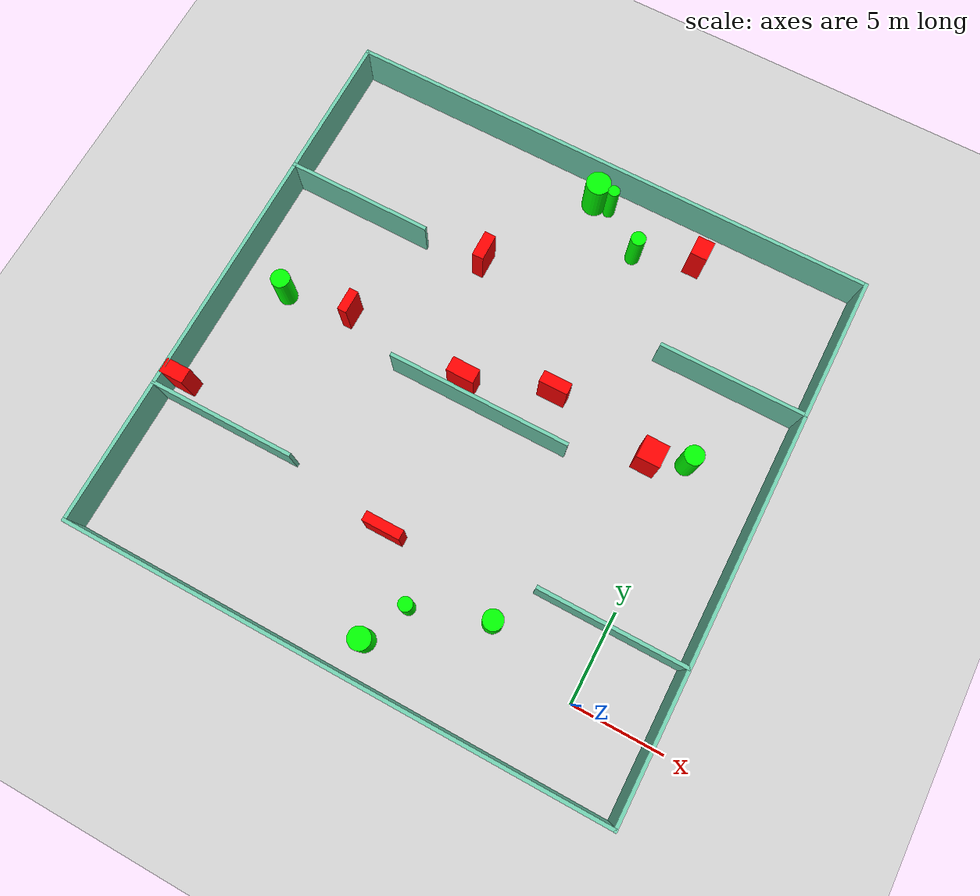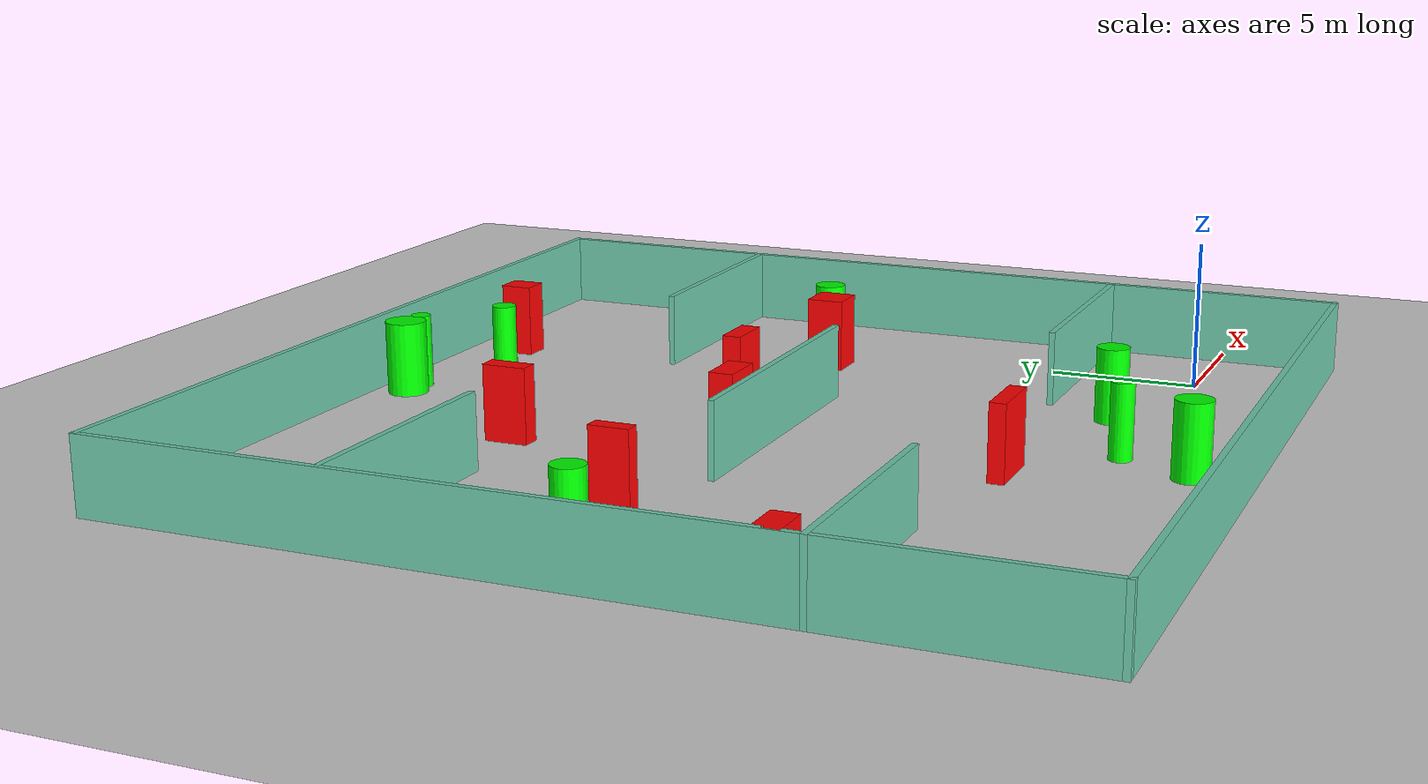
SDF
<sdf version="1.7">
 <world name="default">
  <light name="sun" type="directional">
   <pose>0 0 10 0 -0 0</pose>
   <diffuse>0.8 0.8 0.8 1</diffuse>
   <specular>0.2 0.2 0.2 1</specular>
   <attenuation>
    <range>1000</range>
    <constant>0.9</constant>
    <linear>0.01</linear>
    <quadratic>0.001</quadratic>
   </attenuation>
   <direction>-0.5 0.1 -0.9</direction>
   <spot><inner_angle>0</inner_angle><outer_angle>0</outer_angle><falloff>0</falloff></spot>
  </light>
  <model name="ground_plane">
   <static>1</static>
   <link name="link">
    <collision name="collision">
     <geometry><plane><normal>0 0 1</normal><size>100 100</size></plane></geometry>
     <surface>
      <contact><collide_bitmask>65535</collide_bitmask></contact>
      <friction><ode><mu>100</mu><mu2>50</mu2></ode></friction>
     </surface>
    </collision>
    <visual name="visual">
     <cast_shadows>0</cast_shadows>
     <geometry><plane><normal>0 0 1</normal><size>100 100</size></plane></geometry>
     <material>
      <script><uri>file://media/materials/scripts/gazebo.material</uri><name>Gazebo/Grey</name></script>
     </material>
    </visual>
   </link>
  </model>
  <gravity>0 0 -9.8</gravity>
  <magnetic_field>6e-06 2.3e-05 -4.2e-05</magnetic_field>
  <atmosphere type="adiabatic"/>
  <physics type="ode">
   <max_step_size>0.001</max_step_size>
   <real_time_factor>1</real_time_factor>
   <real_time_update_rate>1000</real_time_update_rate>
  </physics>
  <scene><ambient>0.4 0.4 0.4 1</ambient><background>0.7 0.7 0.7 1</background><shadows>1</shadows></scene>
  <spherical_coordinates>
   <surface_model>EARTH_WGS84</surface_model>
   <latitude_deg>0</latitude_deg>
   <longitude_deg>0</longitude_deg>
   <elevation>0</elevation>
   <heading_deg>0</heading_deg>
  </spherical_coordinates>
  <model name="my_base_walls">
   <link name="Wall_10">
    <collision name="Wall_10_Collision">
     <geometry><box><size>8.2 0.2 2.5</size></box></geometry>
     <pose>0 0 1.25 0 -0 0</pose>
    </collision>
    <visual name="Wall_10_Visual">
     <pose>0 0 1.25 0 -0 0</pose>
     <geometry><box><size>8.2 0.2 2.5</size></box></geometry>
     <material>
      <script><uri>file://media/materials/scripts/gazebo.material</uri><name>Gazebo/Grey</name></script>
      <ambient>0.435294 0.796078 0.67451 1</ambient>
     </material>
     <meta><layer>0</layer></meta>
    </visual>
    <pose>-11 -7 0 0 -0 0</pose>
   </link>
   <link name="Wall_12">
    <collision name="Wall_12_Collision">
     <geometry><box><size>8.2 0.2 2.5</size></box></geometry>
     <pose>0 0 1.25 0 -0 0</pose>
    </collision>
    <visual name="Wall_12_Visual">
     <pose>0 0 1.25 0 -0 0</pose>
     <geometry><box><size>8.2 0.2 2.5</size></box></geometry>
     <material>
      <script><uri>file://media/materials/scripts/gazebo.material</uri><name>Gazebo/Grey</name></script>
      <ambient>0.435294 0.796078 0.67451 1</ambient>
     </material>
     <meta><layer>0</layer></meta>
    </visual>
    <pose>-11 7 0 0 -0 0</pose>
   </link>
   <link name="Wall_14">
    <collision name="Wall_14_Collision">
     <geometry><box><size>8.2 0.2 2.5</size></box></geometry>
     <pose>0 0 1.25 0 -0 0</pose>
    </collision>
    <visual name="Wall_14_Visual">
     <pose>0 0 1.25 0 -0 0</pose>
     <geometry><box><size>8.2 0.2 2.5</size></box></geometry>
     <material>
      <script><uri>file://media/materials/scripts/gazebo.material</uri><name>Gazebo/Grey</name></script>
      <ambient>0.435294 0.796078 0.67451 1</ambient>
     </material>
     <meta><layer>0</layer></meta>
    </visual>
    <pose>11 7 0 0 -0 3.14159</pose>
   </link>
   <link name="Wall_16">
    <collision name="Wall_16_Collision">
     <geometry><box><size>10.2 0.2 2.5</size></box></geometry>
     <pose>0 0 1.25 0 -0 0</pose>
    </collision>
    <visual name="Wall_16_Visual">
     <pose>0 0 1.25 0 -0 0</pose>
     <geometry><box><size>10.2 0.2 2.5</size></box></geometry>
     <material>
      <script><uri>file://media/materials/scripts/gazebo.material</uri><name>Gazebo/Grey</name></script>
      <ambient>0.435294 0.796078 0.67451 1</ambient>
     </material>
     <meta><layer>0</layer></meta>
    </visual>
    <pose>0 0 0 0 -0 3.14159</pose>
   </link>
   <link name="Wall_2">
    <collision name="Wall_2_Collision">
     <geometry><box><size>30.2 0.2 2.5</size></box></geometry>
     <pose>0 0 1.25 0 -0 0</pose>
    </collision>
    <visual name="Wall_2_Visual">
     <pose>0 0 1.25 0 -0 0</pose>
     <geometry><box><size>30.2 0.2 2.5</size></box></geometry>
     <material>
      <script><uri>file://media/materials/scripts/gazebo.material</uri><name>Gazebo/Grey</name></script>
      <ambient>0.435294 0.796078 0.67451 1</ambient>
     </material>
     <meta><layer>0</layer></meta>
    </visual>
    <pose>0 -15 0 0 -0 3.14159</pose>
   </link>
   <link name="Wall_3">
    <collision name="Wall_3_Collision">
     <geometry><box><size>30.2 0.2 2.5</size></box></geometry>
     <pose>0 0 1.25 0 -0 0</pose>
    </collision>
    <visual name="Wall_3_Visual">
     <pose>0 0 1.25 0 -0 0</pose>
     <geometry><box><size>30.2 0.2 2.5</size></box></geometry>
     <material>
      <script><uri>file://media/materials/scripts/gazebo.material</uri><name>Gazebo/Grey</name></script>
      <ambient>0.435294 0.796078 0.67451 1</ambient>
     </material>
     <meta><layer>0</layer></meta>
    </visual>
    <pose>-15 0 0 0 -0 1.5708</pose>
   </link>
   <link name="Wall_4">
    <collision name="Wall_4_Collision">
     <geometry><box><size>30.2 0.2 2.5</size></box></geometry>
     <pose>0 0 1.25 0 -0 0</pose>
    </collision>
    <visual name="Wall_4_Visual">
     <pose>0 0 1.25 0 -0 0</pose>
     <geometry><box><size>30.2 0.2 2.5</size></box></geometry>
     <material>
      <script><uri>file://media/materials/scripts/gazebo.material</uri><name>Gazebo/Grey</name></script>
      <ambient>0.435294 0.796078 0.67451 1</ambient>
     </material>
     <meta><layer>0</layer></meta>
    </visual>
    <pose>0 15 0 0 -0 0</pose>
   </link>
   <link name="Wall_6">
    <collision name="Wall_6_Collision">
     <geometry><box><size>30.2 0.2 2.5</size></box></geometry>
     <pose>0 0 1.25 0 -0 0</pose>
    </collision>
    <visual name="Wall_6_Visual">
     <pose>0 0 1.25 0 -0 0</pose>
     <geometry><box><size>30.2 0.2 2.5</size></box></geometry>
     <material>
      <script><uri>file://media/materials/scripts/gazebo.material</uri><name>Gazebo/Grey</name></script>
      <ambient>0.435294 0.796078 0.67451 1</ambient>
     </material>
     <meta><layer>0</layer></meta>
    </visual>
    <pose>15 0 0 0 -0 1.5708</pose>
   </link>
   <link name="Wall_8">
    <collision name="Wall_8_Collision">
     <geometry><box><size>8.2 0.2 2.5</size></box></geometry>
     <pose>0 0 1.25 0 -0 0</pose>
    </collision>
    <visual name="Wall_8_Visual">
     <pose>0 0 1.25 0 -0 0</pose>
     <geometry><box><size>8.2 0.2 2.5</size></box></geometry>
     <material>
      <script><uri>file://media/materials/scripts/gazebo.material</uri><name>Gazebo/Grey</name></script>
      <ambient>0.435294 0.796078 0.67451 1</ambient>
     </material>
     <meta><layer>0</layer></meta>
    </visual>
    <pose>11 -7 0 0 -0 3.14159</pose>
   </link>
   <static>1</static>
   <pose>-11 11 0 0 -0 0</pose>
  </model>
  <model name="cylinder1">
   <static>1</static>
   <link name="link">
    <inertial>
     <mass>1</mass>
     <inertia><ixx>0.5</ixx><ixy>0</ixy><ixz>0</ixz><iyy>0.5</iyy><iyz>0</iyz><izz>1</izz></inertia>
    </inertial>
    <collision name="collision">
     <geometry><cylinder><radius>0.5984433478620481</radius><length>2.5</length></cylinder></geometry>
    </collision>
    <visual name="visual">
     <geometry><cylinder><radius>0.5984433478620481</radius><length>2.5</length></cylinder></geometry>
     <material>
      <ambient>0 1 0 1</ambient>
      <diffuse>0 1 0 1</diffuse>
      <specular>0.1 0.1 0.1 1</specular>
      <emissive>0 0 0 0</emissive>
     </material>
    </visual>
   </link>
   <pose>-10.418359806179625 -2.1097786383016506 1.25 0 0 0</pose>
  </model>
  <model name="cylinder2">
   <static>1</static>
   <link name="link">
    <inertial>
     <mass>1</mass>
     <inertia><ixx>0.5</ixx><ixy>0</ixy><ixz>0</ixz><iyy>0.5</iyy><iyz>0</iyz><izz>1</izz></inertia>
    </inertial>
    <collision name="collision">
     <geometry><cylinder><radius>0.3793835811991671</radius><length>2.5</length></cylinder></geometry>
    </collision>
    <visual name="visual">
     <geometry><cylinder><radius>0.3793835811991671</radius><length>2.5</length></cylinder></geometry>
     <material>
      <ambient>0 1 0 1</ambient>
      <diffuse>0 1 0 1</diffuse>
      <specular>0.1 0.1 0.1 1</specular>
      <emissive>0 0 0 0</emissive>
     </material>
    </visual>
   </link>
   <pose>-9.26298502358144 0.31633556215784475 1.25 0 0 0</pose>
  </model>
  <model name="cylinder3">
   <static>1</static>
   <link name="link">
    <inertial>
     <mass>1</mass>
     <inertia><ixx>0.5</ixx><ixy>0</ixy><ixz>0</ixz><iyy>0.5</iyy><iyz>0</iyz><izz>1</izz></inertia>
    </inertial>
    <collision name="collision">
     <geometry><cylinder><radius>0.4111278393068384</radius><length>2.5</length></cylinder></geometry>
    </collision>
    <visual name="visual">
     <geometry><cylinder><radius>0.4111278393068384</radius><length>2.5</length></cylinder></geometry>
     <material>
      <ambient>0 1 0 1</ambient>
      <diffuse>0 1 0 1</diffuse>
      <specular>0.1 0.1 0.1 1</specular>
      <emissive>0 0 0 0</emissive>
     </material>
    </visual>
   </link>
   <pose>-7.64579788698823 22.791320519709302 1.25 0 0 0</pose>
  </model>
  <model name="cylinder4">
   <static>1</static>
   <link name="link">
    <inertial>
     <mass>1</mass>
     <inertia><ixx>0.5</ixx><ixy>0</ixy><ixz>0</ixz><iyy>0.5</iyy><iyz>0</iyz><izz>1</izz></inertia>
    </inertial>
    <collision name="collision">
     <geometry><cylinder><radius>0.3292239382885055</radius><length>2.5</length></cylinder></geometry>
    </collision>
    <visual name="visual">
     <geometry><cylinder><radius>0.3292239382885055</radius><length>2.5</length></cylinder></geometry>
     <material>
      <ambient>0 1 0 1</ambient>
      <diffuse>0 1 0 1</diffuse>
      <specular>0.1 0.1 0.1 1</specular>
      <emissive>0 0 0 0</emissive>
     </material>
    </visual>
   </link>
   <pose>-10.011981007198647 24.696736998022978 1.25 0 0 0</pose>
  </model>
  <model name="cylinder5">
   <static>1</static>
   <link name="link">
    <inertial>
     <mass>1</mass>
     <inertia><ixx>0.5</ixx><ixy>0</ixy><ixz>0</ixz><iyy>0.5</iyy><iyz>0</iyz><izz>1</izz></inertia>
    </inertial>
    <collision name="collision">
     <geometry><cylinder><radius>0.5250980383060764</radius><length>2.5</length></cylinder></geometry>
    </collision>
    <visual name="visual">
     <geometry><cylinder><radius>0.5250980383060764</radius><length>2.5</length></cylinder></geometry>
     <material>
      <ambient>0 1 0 1</ambient>
      <diffuse>0 1 0 1</diffuse>
      <specular>0.1 0.1 0.1 1</specular>
      <emissive>0 0 0 0</emissive>
     </material>
    </visual>
   </link>
   <pose>-23.251029225052005 11.903794442685705 1.25 0 0 0</pose>
  </model>
  <model name="cylinder6">
   <static>1</static>
   <link name="link">
    <inertial>
     <mass>1</mass>
     <inertia><ixx>0.5</ixx><ixy>0</ixy><ixz>0</ixz><iyy>0.5</iyy><iyz>0</iyz><izz>1</izz></inertia>
    </inertial>
    <collision name="collision">
     <geometry><cylinder><radius>0.6848906532727277</radius><length>2.5</length></cylinder></geometry>
    </collision>
    <visual name="visual">
     <geometry><cylinder><radius>0.6848906532727277</radius><length>2.5</length></cylinder></geometry>
     <material>
      <ambient>0 1 0 1</ambient>
      <diffuse>0 1 0 1</diffuse>
      <specular>0.1 0.1 0.1 1</specular>
      <emissive>0 0 0 0</emissive>
     </material>
    </visual>
   </link>
   <pose>-10.946355694290666 24.724185452318647 1.25 0 0 0</pose>
  </model>
  <model name="cylinder7">
   <static>1</static>
   <link name="link">
    <inertial>
     <mass>1</mass>
     <inertia><ixx>0.5</ixx><ixy>0</ixy><ixz>0</ixz><iyy>0.5</iyy><iyz>0</iyz><izz>1</izz></inertia>
    </inertial>
    <collision name="collision">
     <geometry><cylinder><radius>0.5391305702343481</radius><length>2.5</length></cylinder></geometry>
    </collision>
    <visual name="visual">
     <geometry><cylinder><radius>0.5391305702343481</radius><length>2.5</length></cylinder></geometry>
     <material>
      <ambient>0 1 0 1</ambient>
      <diffuse>0 1 0 1</diffuse>
      <specular>0.1 0.1 0.1 1</specular>
      <emissive>0 0 0 0</emissive>
     </material>
    </visual>
   </link>
   <pose>-5.206980432128425 1.6333558802084873 1.25 0 0 0</pose>
  </model>
  <model name="cylinder8">
   <static>1</static>
   <link name="link">
    <inertial>
     <mass>1</mass>
     <inertia><ixx>0.5</ixx><ixy>0</ixy><ixz>0</ixz><iyy>0.5</iyy><iyz>0</iyz><izz>1</izz></inertia>
    </inertial>
    <collision name="collision">
     <geometry><cylinder><radius>0.5333521268633427</radius><length>2.5</length></cylinder></geometry>
    </collision>
    <visual name="visual">
     <geometry><cylinder><radius>0.5333521268633427</radius><length>2.5</length></cylinder></geometry>
     <material>
      <ambient>0 1 0 1</ambient>
      <diffuse>0 1 0 1</diffuse>
      <specular>0.1 0.1 0.1 1</specular>
      <emissive>0 0 0 0</emissive>
     </material>
    </visual>
   </link>
   <pose>-0.09549556218421884 13.46727772772483 1.25 0 0 0</pose>
  </model>
  <model name="box1">
   <static>1</static>
   <link name="link">
    <inertial>
     <mass>1</mass>
     <inertia><ixx>0.083</ixx><ixy>0</ixy><ixz>0</ixz><iyy>0.083</iyy><iyz>0</iyz><izz>0.083</izz></inertia>
    </inertial>
    <collision name="collision">
     <geometry><box><size>0.640090100869666 1.4790448319997138 2.5</size></box></geometry>
    </collision>
    <visual name="visual">
     <geometry><box><size>0.640090100869666 1.4790448319997138 2.5</size></box></geometry>
     <material>
      <ambient>1 0 0 1</ambient>
      <diffuse>1 0 0 1</diffuse>
      <specular>0.1 0.1 0.1 1</specular>
      <emissive>0 0 0 0</emissive>
     </material>
    </visual>
    <sensor name="my_contact" type="contact">
     <contact><collision>box_collision</collision><topic>__default_topic__</topic></contact>
    </sensor>
   </link>
   <pose>-14.70543673032245 18.598904590203254 1.25 0 0 0</pose>
  </model>
  <model name="box2">
   <static>1</static>
   <link name="link">
    <inertial>
     <mass>1</mass>
     <inertia><ixx>0.083</ixx><ixy>0</ixy><ixz>0</ixz><iyy>0.083</iyy><iyz>0</iyz><izz>0.083</izz></inertia>
    </inertial>
    <collision name="collision">
     <geometry><box><size>1.55328123111997 0.8151922913763165 2.5</size></box></geometry>
    </collision>
    <visual name="visual">
     <geometry><box><size>1.55328123111997 0.8151922913763165 2.5</size></box></geometry>
     <material>
      <ambient>1 0 0 1</ambient>
      <diffuse>1 0 0 1</diffuse>
      <specular>0.1 0.1 0.1 1</specular>
      <emissive>0 0 0 0</emissive>
     </material>
    </visual>
    <sensor name="my_contact" type="contact">
     <contact><collision>box_collision</collision><topic>__default_topic__</topic></contact>
    </sensor>
   </link>
   <pose>-12.402536249917226 11.983601847615049 1.25 0 0 0</pose>
  </model>
  <model name="box3">
   <static>1</static>
   <link name="link">
    <inertial>
     <mass>1</mass>
     <inertia><ixx>0.083</ixx><ixy>0</ixy><ixz>0</ixz><iyy>0.083</iyy><iyz>0</iyz><izz>0.083</izz></inertia>
    </inertial>
    <collision name="collision">
     <geometry><box><size>0.5137049350397362 1.3006802164444664 2.5</size></box></geometry>
    </collision>
    <visual name="visual">
     <geometry><box><size>0.5137049350397362 1.3006802164444664 2.5</size></box></geometry>
     <material>
      <ambient>1 0 0 1</ambient>
      <diffuse>1 0 0 1</diffuse>
      <specular>0.1 0.1 0.1 1</specular>
      <emissive>0 0 0 0</emissive>
     </material>
    </visual>
    <sensor name="my_contact" type="contact">
     <contact><collision>box_collision</collision><topic>__default_topic__</topic></contact>
    </sensor>
   </link>
   <pose>-19.50474187229107 12.508452541844138 1.25 0 0 0</pose>
  </model>
  <model name="box4">
   <static>1</static>
   <link name="link">
    <inertial>
     <mass>1</mass>
     <inertia><ixx>0.083</ixx><ixy>0</ixy><ixz>0</ixz><iyy>0.083</iyy><iyz>0</iyz><izz>0.083</izz></inertia>
    </inertial>
    <collision name="collision">
     <geometry><box><size>1.3594068867311315 0.823295503433259 2.5</size></box></geometry>
    </collision>
    <visual name="visual">
     <geometry><box><size>1.3594068867311315 0.823295503433259 2.5</size></box></geometry>
     <material>
      <ambient>1 0 0 1</ambient>
      <diffuse>1 0 0 1</diffuse>
      <specular>0.1 0.1 0.1 1</specular>
      <emissive>0 0 0 0</emissive>
     </material>
    </visual>
    <sensor name="my_contact" type="contact">
     <contact><collision>box_collision</collision><topic>__default_topic__</topic></contact>
    </sensor>
   </link>
   <pose>-25.376197871802628 5.031930965253064 1.25 0 0 0</pose>
  </model>
  <model name="box5">
   <static>1</static>
   <link name="link">
    <inertial>
     <mass>1</mass>
     <inertia><ixx>0.083</ixx><ixy>0</ixy><ixz>0</ixz><iyy>0.083</iyy><iyz>0</iyz><izz>0.083</izz></inertia>
    </inertial>
    <collision name="collision">
     <geometry><box><size>1.2995837345044647 1.257333581526407 2.5</size></box></geometry>
    </collision>
    <visual name="visual">
     <geometry><box><size>1.2995837345044647 1.257333581526407 2.5</size></box></geometry>
     <material>
      <ambient>1 0 0 1</ambient>
      <diffuse>1 0 0 1</diffuse>
      <specular>0.1 0.1 0.1 1</specular>
      <emissive>0 0 0 0</emissive>
     </material>
    </visual>
    <sensor name="my_contact" type="contact">
     <contact><collision>box_collision</collision><topic>__default_topic__</topic></contact>
    </sensor>
   </link>
   <pose>-1.9975501565698863 12.68009907044192 1.25 0 0 0</pose>
  </model>
  <model name="box6">
   <static>1</static>
   <link name="link">
    <inertial>
     <mass>1</mass>
     <inertia><ixx>0.083</ixx><ixy>0</ixy><ixz>0</ixz><iyy>0.083</iyy><iyz>0</iyz><izz>0.083</izz></inertia>
    </inertial>
    <collision name="collision">
     <geometry><box><size>1.587368798510986 0.6404245315873074 2.5</size></box></geometry>
    </collision>
    <visual name="visual">
     <geometry><box><size>1.587368798510986 0.6404245315873074 2.5</size></box></geometry>
     <material>
      <ambient>1 0 0 1</ambient>
      <diffuse>1 0 0 1</diffuse>
      <specular>0.1 0.1 0.1 1</specular>
      <emissive>0 0 0 0</emissive>
     </material>
    </visual>
    <sensor name="my_contact" type="contact">
     <contact><collision>box_collision</collision><topic>__default_topic__</topic></contact>
    </sensor>
   </link>
   <pose>-7.920833488121836 13.599492086762364 1.25 0 0 0</pose>
  </model>
  <model name="box7">
   <static>1</static>
   <link name="link">
    <inertial>
     <mass>1</mass>
     <inertia><ixx>0.083</ixx><ixy>0</ixy><ixz>0</ixz><iyy>0.083</iyy><iyz>0</iyz><izz>0.083</izz></inertia>
    </inertial>
    <collision name="collision">
     <geometry><box><size>0.954093129855327 1.0991268456656895 2.5</size></box></geometry>
    </collision>
    <visual name="visual">
     <geometry><box><size>0.954093129855327 1.0991268456656895 2.5</size></box></geometry>
     <material>
      <ambient>1 0 0 1</ambient>
      <diffuse>1 0 0 1</diffuse>
      <specular>0.1 0.1 0.1 1</specular>
      <emissive>0 0 0 0</emissive>
     </material>
    </visual>
    <sensor name="my_contact" type="contact">
     <contact><collision>box_collision</collision><topic>__default_topic__</topic></contact>
    </sensor>
   </link>
   <pose>-4.403256851413817 23.88799540380003 1.25 0 0 0</pose>
  </model>
  <model name="box8">
   <static>1</static>
   <link name="link">
    <inertial>
     <mass>1</mass>
     <inertia><ixx>0.083</ixx><ixy>0</ixy><ixz>0</ixz><iyy>0.083</iyy><iyz>0</iyz><izz>0.083</izz></inertia>
    </inertial>
    <collision name="collision">
     <geometry><box><size>2.0947551121760712 0.5363973686000637 2.5</size></box></geometry>
    </collision>
    <visual name="visual">
     <geometry><box><size>2.0947551121760712 0.5363973686000637 2.5</size></box></geometry>
     <material>
      <ambient>1 0 0 1</ambient>
      <diffuse>1 0 0 1</diffuse>
      <specular>0.1 0.1 0.1 1</specular>
      <emissive>0 0 0 0</emissive>
     </material>
    </visual>
    <sensor name="my_contact" type="contact">
     <contact><collision>box_collision</collision><topic>__default_topic__</topic></contact>
    </sensor>
   </link>
   <pose>-12.093315620710516 3.112792143961018 1.25 0 0 0</pose>
  </model>
 </world>
</sdf>
